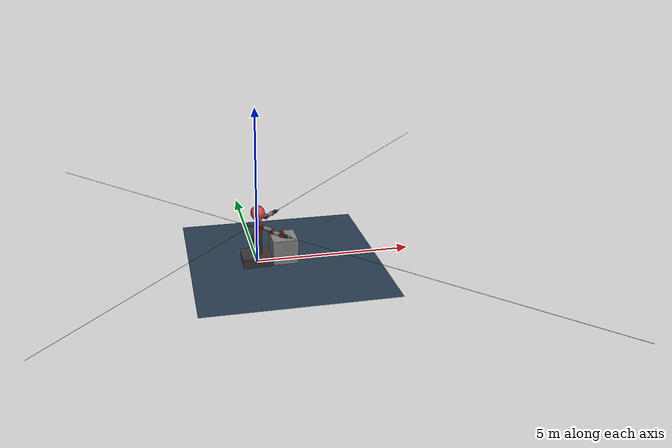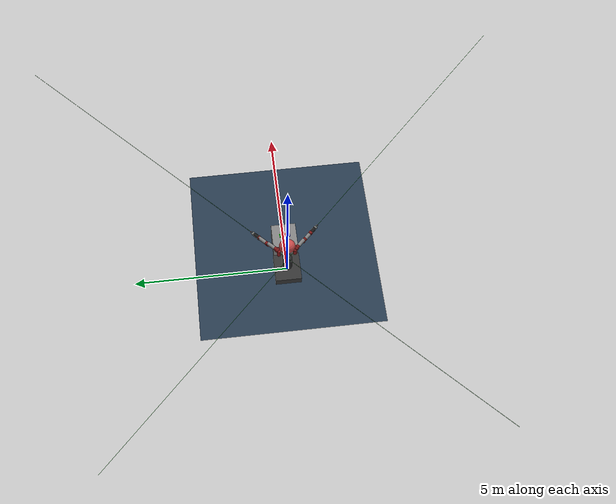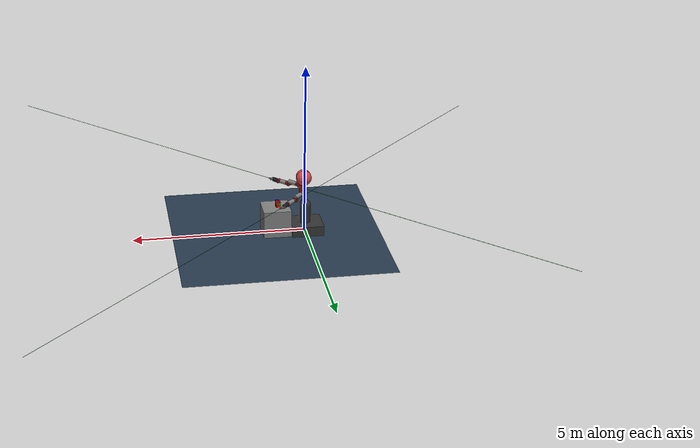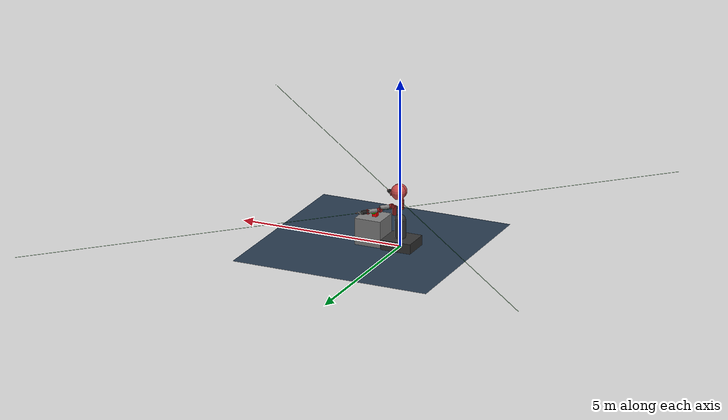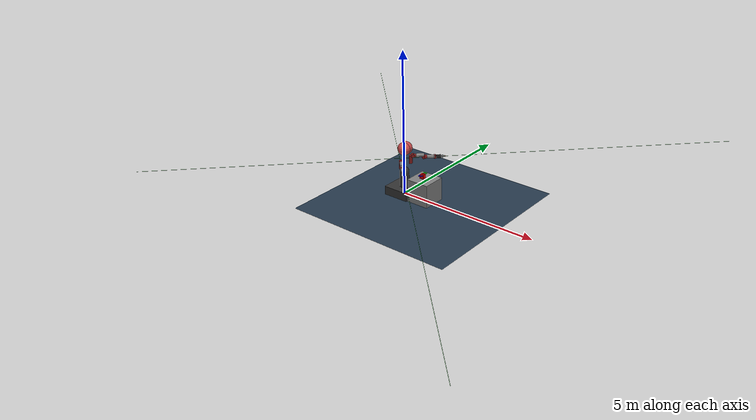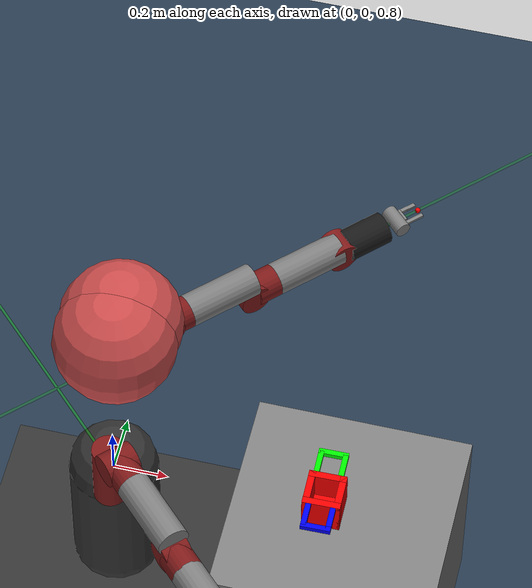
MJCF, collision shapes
<mujoco model="base">
	<compiler angle="radian" meshdir="meshes/" />
	<option cone="elliptic" impratio="20" />
	<size nconmax="5000" njmax="5000" />

	<asset>
	<texture builtin="gradient" height="256" rgb1=".9 .9 1." rgb2=".2 .3 .4" type="skybox" width="256" />
		<texture builtin="checker" height="512" name="texplane" rgb1=".2 .3 .4" rgb2=".1 0.15 0.2" type="2d" width="512" />
		<material name="floorplane" reflectance="0.5" texrepeat="1 1" texture="texplane" texuniform="true" />
	<mesh file="/home/cvgl_ros/installed_libraries/MujocoManipulation/robosuite/models/assets/robots/baxter/meshes/torso/base_link.STL" name="base_link" />
    <mesh file="/home/cvgl_ros/installed_libraries/MujocoManipulation/robosuite/models/assets/robots/baxter/meshes/torso/base_link_collision.STL" name="base_link_collision" />
    <mesh file="/home/cvgl_ros/installed_libraries/MujocoManipulation/robosuite/models/assets/robots/baxter/meshes/base/PEDESTAL.STL" name="PEDESTAL" />
    <mesh file="/home/cvgl_ros/installed_libraries/MujocoManipulation/robosuite/models/assets/robots/baxter/meshes/base/pedestal_link_collision.STL" name="pedestal_link_collision" />
    <mesh file="/home/cvgl_ros/installed_libraries/MujocoManipulation/robosuite/models/assets/robots/baxter/meshes/head/H0.STL" name="H0" />
    <mesh file="/home/cvgl_ros/installed_libraries/MujocoManipulation/robosuite/models/assets/robots/baxter/meshes/head/H1.STL" name="H1" />
    <mesh file="/home/cvgl_ros/installed_libraries/MujocoManipulation/robosuite/models/assets/robots/baxter/meshes/upper_shoulder/S0.STL" name="S0" />
    <mesh file="/home/cvgl_ros/installed_libraries/MujocoManipulation/robosuite/models/assets/robots/baxter/meshes/lower_shoulder/S1.STL" name="S1" />
    <mesh file="/home/cvgl_ros/installed_libraries/MujocoManipulation/robosuite/models/assets/robots/baxter/meshes/upper_elbow/E0.STL" name="E0" />
    <mesh file="/home/cvgl_ros/installed_libraries/MujocoManipulation/robosuite/models/assets/robots/baxter/meshes/lower_elbow/E1.STL" name="E1" />
    <mesh file="/home/cvgl_ros/installed_libraries/MujocoManipulation/robosuite/models/assets/robots/baxter/meshes/upper_forearm/W0.STL" name="W0" />
    <mesh file="/home/cvgl_ros/installed_libraries/MujocoManipulation/robosuite/models/assets/robots/baxter/meshes/lower_forearm/W1.STL" name="W1" />
    <mesh file="/home/cvgl_ros/installed_libraries/MujocoManipulation/robosuite/models/assets/robots/baxter/meshes/wrist/W2.STL" name="W2" />
    <mesh file="/home/cvgl_ros/installed_libraries/MujocoManipulation/robosuite/models/assets/robots/baxter/meshes/electric_gripper/fingers/paddle_tip.STL" name="paddle_tip" />
  <mesh file="/home/cvgl_ros/installed_libraries/MujocoManipulation/robosuite/models/assets/grippers/meshes/two_finger_gripper/electric_gripper_base.STL" name="electric_gripper_base" />
        <mesh file="/home/cvgl_ros/installed_libraries/MujocoManipulation/robosuite/models/assets/grippers/meshes/two_finger_gripper/standard_narrow.STL" name="standard_narrow" />
        <mesh file="/home/cvgl_ros/installed_libraries/MujocoManipulation/robosuite/models/assets/grippers/meshes/two_finger_gripper/half_round_tip.STL" name="half_round_tip" />
    </asset>

	<actuator>
	<velocity ctrllimited="true" ctrlrange="-2 2" joint="right_s0" kv="60" />
    <velocity ctrllimited="true" ctrlrange="-2 2" joint="right_s1" kv="50" />
    <velocity ctrllimited="true" ctrlrange="-2 2" joint="right_e0" kv="20" />
    <velocity ctrllimited="true" ctrlrange="-2 2" joint="right_e1" kv="20" />
    <velocity ctrllimited="true" ctrlrange="-4 4" joint="right_w0" kv="5" />
    <velocity ctrllimited="true" ctrlrange="-4 4" joint="right_w1" kv="5" />
    <velocity ctrllimited="true" ctrlrange="-4 4" joint="right_w2" kv="5" />

    <velocity ctrllimited="true" ctrlrange="-2 2" joint="left_s0" kv="60" />
    <velocity ctrllimited="true" ctrlrange="-2 2" joint="left_s1" kv="50" />
    <velocity ctrllimited="true" ctrlrange="-2 2" joint="left_e0" kv="20" />
    <velocity ctrllimited="true" ctrlrange="-2 2" joint="left_e1" kv="20" />
    <velocity ctrllimited="true" ctrlrange="-4 4" joint="left_w0" kv="5" />
    <velocity ctrllimited="true" ctrlrange="-4 4" joint="left_w1" kv="5" />
    <velocity ctrllimited="true" ctrlrange="-4 4" joint="left_w2" kv="5" />

<position ctrllimited="true" ctrlrange="-0.0115 0.020833" forcelimited="true" forcerange="-20 20" joint="r_gripper_r_finger_joint" kp="10000" name="gripper_r_gripper_r_finger_joint" />
        <position ctrllimited="true" ctrlrange="-0.020833 0.0115" forcelimited="true" forcerange="-20 20" joint="r_gripper_l_finger_joint" kp="10000" name="gripper_r_gripper_l_finger_joint" />

    <position ctrllimited="true" ctrlrange="-0.0115 0.020833" forcelimited="true" forcerange="-20 20" joint="l_gripper_r_finger_joint" kp="10000" name="gripper_l_gripper_r_finger_joint" />
        <position ctrllimited="true" ctrlrange="-0.020833 0.0115" forcelimited="true" forcerange="-20 20" joint="l_gripper_l_finger_joint" kp="10000" name="gripper_l_gripper_l_finger_joint" />

    </actuator>

	<worldbody>
	<geom condim="3" material="floorplane" name="floor" pos="0.8500000000000001 0.0 0.0" size="3 3 .125" type="plane" />
		<body name="table" pos="0.8500000000000001 0.0 0.4">
			<geom friction="1.0 0.005 0.0001" name="table_collision" pos="0 0 0" size="0.4 0.4 0.4" type="box" />
			<geom conaffinity="0" contype="0" group="1" name="table_visual" pos="0 0 0" size="0.4 0.4 0.4" type="box" />
			<site name="table_top" pos="0.0 0.0 0.4" rgba="0 0 0 0" size="0.001 0.001 0.001" />
		</body>
		<light castshadow="false" diffuse=".8 .8 .8" dir="0 -.15 -1" directional="false" pos="1.85 1.0 4.0" specular="0.3 0.3 0.3" />
		<light castshadow="false" diffuse=".8 .8 .8" dir="0 -.15 -1" directional="false" pos="-2.15 -3.0 4.0" specular="0.3 0.3 0.3" />

		<camera mode="fixed" name="birdview" pos="0.6500000000000001 0.0 3.0" quat="0.7071 0 0 0.7071" />

		<camera mode="fixed" name="tabletop" pos="1.35 0.0 1.35" quat="0.653 0.271 0.271 0.653" />

		<camera mode="fixed" name="frontview" pos="2.45 0.0 1.6" quat="0.56 0.43 0.43 0.56" />

	<body name="base" pos="0.0 0.0 0.913">
      <inertial diaginertia="0.001 0.001 0.001" mass="10" pos="0 0 0" />
      <body name="collision_head_link_1" pos="0.11 0 0.75">
        <inertial diaginertia="1e-008 1e-008 1e-008" mass="0.0001" pos="0 0 0" />
        <geom class="viz" margin="0.001" pos="0 0 0" rgba="0.8 0.3 0.3 0.3" size="0.001" type="sphere" />
        <geom margin="0.001" pos="-0.07 -0.04 0" rgba="0.8 0.3 0.3 0.3" size="0.22" type="sphere" />
      </body>
      <body name="collision_head_link_2" pos="0.11 0 0.75">
        <inertial diaginertia="1e-008 1e-008 1e-008" mass="0.0001" pos="0 0 0" />
        <geom margin="0.001" pos="0 0 0" rgba="0.8 0.3 0.3 0.3" size="0.001" type="sphere" />
        <geom margin="0.001" pos="-0.07 0.04 0" rgba="0.8 0.3 0.3 0.3" size="0.22" type="sphere" />
      </body>
      <body name="torso" pos="0 0 0">
        <inertial diaginertia="1.87139 1.66268 0.779991" mass="35.3365" pos="0 0 0" quat="0.997433 0.00167178 0.0715546 -0.00209003" />
        <geom class="viz" margin="0.001" mesh="base_link" />
        <geom class="viz" margin="0.001" mesh="base_link_collision" type="mesh" />
        <body name="pedestal" pos="0 0 0">
          <inertial diaginertia="6.0869 5.81635 4.20915" mass="60.864" pos="0 0 0" quat="0.659267 -0.259505 -0.260945 0.655692" />
          <geom class="viz" margin="0.001" mesh="PEDESTAL" rgba="0.2 0.2 0.2 1" />
          <geom margin="0.001" pos="-.04 0 -.8" rgba="0.2 0.2 0.2 1" size=".46 .425 .16" type="box" />
          <geom margin="0.001" pos="0 0 -.35" rgba="0.2 0.2 0.2 1" size=".165 .25" type="capsule" />
        </body>
        <body name="head" pos="0.06 0 0.686">
          <inertial diaginertia="0.00474065 0.00461087 0.00199949" mass="0.547767" pos="0 0 0" quat="0.339345 0.850736 -0.347392 0.201027" />
          <joint armature=".01" axis="0 0 1" damping="0" limited="true" name="head_pan" pos="0 0 0" range="-1.5708 1.5708" type="hinge" />
          <geom class="viz" margin="0.001" mesh="H0" rgba="0.2 0.2 0.2 1" />
          <body name="screen" pos="0.1227 0 0" quat="0.453099 0.542864 0.542864 0.453099">
            <inertial diaginertia="0.0040484 0.00275826 0.00150834" mass="0.440171" pos="0 0 0" quat="0.995785 0.0113501 -0.000390852 0.0910132" />
            <geom class="viz" euler="0 -1.57 0" margin="0.001" mesh="H1" pos="0 0 -.03" rgba="0.5 0.1 0.1 1" />
            <geom class="viz" margin="0.001" name="display" pos="0 -0.016 0" quat="0.991445 0.130526 0 0" rgba=".9 .9 .9 1" size="0.109 0.08 0.002" type="box" />
          </body>
        </body>
        <body name="right_arm_mount" pos="0.024645 -0.219645 0.118588" quat="0.923879 0 0 -0.382684">
          <inertial diaginertia="1e-008 1e-008 1e-008" mass="0.0001" pos="0 0 0" />
          <body name="right_upper_shoulder" pos="0.055695 0 0.011038">
            <inertial diaginertia="0.0498344 0.0377511 0.0331351" mass="5.70044" pos="0.01783 0.00086 0.19127" quat="0.975667 0.0673303 -0.206117 0.0325173" />
            <joint armature=".01" axis="0 0 1" damping="0" limited="true" name="right_s0" pos="0 0 0" range="-1.70168 1.70168" type="hinge" />
            <geom class="viz" margin="0.001" mesh="S0" rgba="0.5 0.1 0.1 1" />
            <geom margin="0.001" pos="0 0 0.1361" rgba="0.5 0.1 0.1 1" size="0.06 0.1361" type="cylinder" />
            <body name="right_lower_shoulder" pos="0.069 0 0.27035" quat="0.707107 -0.707107 0 0">
              <inertial diaginertia="0.0278991 0.0212327 0.0112937" mass="3.22698" pos="0.06845 0.00269 -0.00529" quat="0.447487 0.536948 0.56425 0.439391" />
              <joint armature=".01" axis="0 0 1" damping="0" limited="true" name="right_s1" pos="0 0 0" range="-2.147 1.047" type="hinge" />
              <geom class="viz" margin="0.001" mesh="S1" rgba="0.5 0.1 0.1 1" />
              <geom margin="0.001" pos="0 0 0" rgba="0.5 0.1 0.1 1" size="0.06 0.06" type="cylinder" />
              <body name="right_upper_elbow" pos="0.102 0 0" quat="0.5 0.5 0.5 0.5">
                <inertial diaginertia="0.0287695 0.0273625 0.011409" mass="4.31272" pos="-0.00276 0.00132 0.18086" quat="0.838995 -0.0423128 -0.121287 0.52876" />
                <joint armature=".01" axis="0 0 1" damping="0" limited="true" name="right_e0" pos="0 0 0" range="-3.05418 3.05418" type="hinge" />
                <geom class="viz" margin="0.001" mesh="E0" rgba="0.5 0.1 0.1 1" />
                <geom margin="0.001" pos="0 0 -0.0535" rgba="0.5 0.1 0.1 1" size="0.06 0.0535" type="cylinder" />
                <geom class="viz" margin="0.001" name="right_upper_elbow_visual" pos="0 0 0.1365" size="0.06 0.1365" type="cylinder" />
                <body name="right_lower_elbow" pos="0.069 0 0.26242" quat="0.5 -0.5 -0.5 -0.5">
                  <inertial diaginertia="0.0132096 0.00950002 0.00685697" mass="2.07206" pos="0.02611 0.00159 -0.01117" quat="0.440433 0.577149 0.562777 0.395221" />
                  <joint armature=".01" axis="0 0 1" damping="0" limited="true" name="right_e1" pos="0 0 0" range="-0.05 2.618" type="hinge" />
                  <geom class="viz" margin="0.001" mesh="E1" rgba="0.5 0.1 0.1 1" />
                  <geom margin="0.001" pos="0 0 0" rgba="0.5 0.1 0.1 1" size="0.06 0.05" type="cylinder" />
                  <body name="right_upper_forearm" pos="0.10359 0 0" quat="0.5 0.5 0.5 0.5">
                    <inertial diaginertia="0.016916 0.0165511 0.00371123" mass="2.24665" pos="-0.00168 0.0046 0.13952" quat="0.892709 -0.0256256 0.00446984 0.449882" />
                    <joint armature=".01" axis="0 0 1" damping="0" limited="true" name="right_w0" pos="0 0 0" range="-3.059 3.059" type="hinge" />
                    <geom class="viz" margin="0.001" mesh="W0" rgba="0.5 0.1 0.1 1" />
                    <geom margin="0.001" pos="0 0 -0.044" rgba="0.5 0.1 0.1 1" size="0.06 0.044" type="cylinder" />
                    <geom class="viz" margin="0.001" name="right_upper_forearm_visual" pos="0 0 0.1" size="0.06 0.1036" type="cylinder" />
                    <body name="right_lower_forearm" pos="0.01 0 0.2707" quat="0.5 -0.5 -0.5 -0.5">
                      <inertial diaginertia="0.00708828 0.00552689 0.00379383" mass="1.60979" pos="0.06041 0.00697 0.006" quat="0.456911 0.468526 0.475683 0.587743" />
                      <joint armature=".01" axis="0 0 1" damping="0" limited="true" name="right_w1" pos="0 0 0" range="-1.5708 2.094" type="hinge" />
                      <geom class="viz" margin="0.001" mesh="W1" rgba="0.5 0.1 0.1 1" />
                      <geom margin="0.001" pos="0 0 0" rgba="0.5 0.1 0.1 1" size="0.06 0.05" type="cylinder" />
                      <body name="right_wrist" pos="0.115975 0 0" quat="0.5 0.5 0.5 0.5">
                        <inertial diaginertia="0.0003082 0.000269928 0.000251035" mass="0.35093" pos="0.00198 0.00125 0.01855" quat="0.0594843 0.68926 -0.16016 0.704082" />
                        <joint armature=".01" axis="0 0 1" damping="0" limited="true" name="right_w2" pos="0 0 0" range="-3.059 3.059" type="hinge" />
                        <geom class="viz" margin="0.001" mesh="W2" rgba="0.1 0.1 0.1 1" />
                        <geom margin="0.001" pos="0 0 0" rgba="0.1 0.1 0.1 1" size="0.06 0.0825" type="cylinder" />
                        <body name="right_hand" pos="0 0 0.11355">

                        <inertial diaginertia="1e-08 1e-08 1e-08" mass="1e-08" pos="1e-08 1e-08 1e-08" quat="0.820473 0.339851 -0.17592 0.424708" />
        <geom size="1e-08 5e-09" type="cylinder" />
        <body name="right_gripper_base" pos="0 0 0.025">
            <inertial diaginertia="3e-08 2e-08 2e-08" mass="0.3" pos="0 0 0" quat="-0.5 0.5 0.5 0.5" />
            <geom conaffinity="0" contype="0" group="1" mesh="electric_gripper_base" quat="0 0 0.707107 0.707107" type="mesh" />
            <geom quat="0 0 0.707107 0.707107" size="0.029 0.05" type="cylinder" />
            <body name="right_gripper" pos="0 0 0.095">
                <inertial diaginertia="0 0 0" mass="0.0001" pos="0 0 0" />

                <site group="1" name="grip_site" pos="0 0 0" rgba="1 0 0 1" size="0.01 0.01 0.01" type="sphere" />

                <site group="1" name="grip_site_cylinder" pos="0 0 0" rgba="0 1 0 0.3" size="0.005 10" type="cylinder" />

                <camera fovy="75" mode="fixed" name="eye_in_hand" pos="0 0 0" quat="0 -1 1 0" />
            </body>

            <body name="r_gripper_l_finger" pos="0 0.01 0.02">
                <inertial diaginertia="0.01 0.01 0.01" mass="0.02" pos="0 0 0" quat="0 0 0 -1" />

                <joint axis="0 1 0" damping="100" limited="true" name="r_gripper_l_finger_joint" pos="0 0 0" range="-0.0115 0.020833" type="slide" />

                <geom conaffinity="0" contype="0" group="1" mesh="standard_narrow" name="r_gripper_l_finger" quat="0 0 0 -1" type="mesh" />

                <geom conaffinity="1" contype="0" friction="0 0 0" name="l_finger_g0" pos="0 0.01725 0.04" quat="0 0 0 -1" size="0.005 0.00675 0.0375" type="box" />
                <geom conaffinity="1" contype="0" friction="0 0 0" name="l_finger_g1" pos="-0.005 -0.003 0.0083" quat="0 0 0 -1" size="0.005 0.025 0.0085" type="box" />

                <body name="r_gripper_l_finger_tip" pos="0 0.01725 0.075">
                    <inertial diaginertia="0.01 0.01 0.01" mass="0.01" pos="0 0 0" quat="0 0 0 1" />
                    <geom conaffinity="0" contype="0" group="1" mesh="half_round_tip" quat="0 0 0 1" type="mesh" />

                    <geom conaffinity="1" contype="0" friction="0 0 0" name="l_fingertip_g0" pos="0 -0.0045 -0.015" quat="0 0 0 1" size="0.004 0.004 0.0185" type="box" />

                </body>
            </body>

            <body name="r_gripper_r_finger" pos="0 -0.01 0.02">
                <inertial diaginertia="0.01 0.01 0.01" mass="0.02" pos="0 0 0" />

                <joint axis="0 1 0" damping="100" limited="true" name="r_gripper_r_finger_joint" pos="0 0 0" range="-0.020833 0.0115" type="slide" />

                <geom conaffinity="0" contype="0" group="1" mesh="standard_narrow" name="r_gripper_r_finger" type="mesh" />

                <geom conaffinity="1" contype="0" friction="0 0 0" name="r_finger_g0" pos="0 -0.01725 0.04" size="0.005 0.00675 0.0375" type="box" />
                <geom conaffinity="1" contype="0" friction="0 0 0" name="r_finger_g1" pos="0.005 0.003 0.0083" size="0.005 0.025 0.0085" type="box" />

                <body name="r_gripper_r_finger_tip" pos="0 -0.01725 0.075">
                    <inertial diaginertia="0.01 0.01 0.01" mass="0.01" pos="0 0 0" />
                    <geom conaffinity="0" contype="0" group="1" mesh="half_round_tip" type="mesh" />

                    <geom conaffinity="1" contype="0" friction="0 0 0" name="r_fingertip_g0" pos="0 0.0045 -0.015" size="0.004 0.004 0.0185" type="box" />

                </body>
            </body>
        </body>
    </body>
                      </body>
                    </body>
                  </body>
                </body>
              </body>
            </body>
          </body>
        </body>
        <body name="left_arm_mount" pos="0.024645 0.219645 0.118588" quat="0.923879 0 0 0.382684">
          <inertial diaginertia="1e-008 1e-008 1e-008" mass="0.0001" pos="0 0 0" />
          <body name="left_upper_shoulder" pos="0.055695 0 0.011038">
            <inertial diaginertia="0.0498344 0.0377511 0.0331351" mass="5.70044" pos="0.01783 0.00086 0.19127" quat="0.975667 0.0673303 -0.206117 0.0325173" />
            <joint armature=".01" axis="0 0 1" damping="0" limited="true" name="left_s0" pos="0 0 0" range="-1.70168 1.70168" type="hinge" />
            <geom class="viz" margin="0.001" mesh="S0" rgba="0.5 0.1 0.1 1" />
            <geom margin="0.001" pos="0 0 0.1361" rgba="0.5 0.1 0.1 1" size="0.06 0.1361" type="cylinder" />
            <body name="left_lower_shoulder" pos="0.069 0 0.27035" quat="0.707107 -0.707107 0 0">
              <inertial diaginertia="0.0278991 0.0212327 0.0112937" mass="3.22698" pos="0.06845 0.00269 -0.00529" quat="0.447487 0.536948 0.56425 0.439391" />
              <joint armature=".01" axis="0 0 1" damping="0" limited="true" name="left_s1" pos="0 0 0" range="-2.147 1.047" type="hinge" />
              <geom class="viz" margin="0.001" mesh="S1" rgba="0.5 0.1 0.1 1" />
              <geom margin="0.001" pos="0 0 0" rgba="0.5 0.1 0.1 1" size="0.06 0.06" type="cylinder" />
              <body name="left_upper_elbow" pos="0.102 0 0" quat="0.5 0.5 0.5 0.5">
                <inertial diaginertia="0.0287695 0.0273625 0.011409" mass="4.31272" pos="-0.00276 0.00132 0.18086" quat="0.838995 -0.0423128 -0.121287 0.52876" />
                <joint armature=".01" axis="0 0 1" damping="0" limited="true" name="left_e0" pos="0 0 0" range="-3.05418 3.05418" type="hinge" />
                <geom class="viz" margin="0.001" mesh="E0" rgba="0.5 0.1 0.1 1" />
                <geom margin="0.001" pos="0 0 -0.0535" rgba="0.5 0.1 0.1 1" size="0.06 0.0535" type="cylinder" />
                <geom class="viz" margin="0.001" name="left_upper_elbow_visual" pos="0 0 0.1365" size="0.06 0.1365" type="cylinder" />
                <body name="left_lower_elbow" pos="0.069 0 0.26242" quat="0.5 -0.5 -0.5 -0.5">
                  <inertial diaginertia="0.0132096 0.00950002 0.00685697" mass="2.07206" pos="0.02611 0.00159 -0.01117" quat="0.440433 0.577149 0.562777 0.395221" />
                  <joint armature=".01" axis="0 0 1" damping="0" limited="true" name="left_e1" pos="0 0 0" range="-0.05 2.618" type="hinge" />
                  <geom class="viz" margin="0.001" mesh="E1" rgba="0.5 0.1 0.1 1" />
                  <geom margin="0.001" pos="0 0 0" rgba="0.5 0.1 0.1 1" size="0.06 0.05" type="cylinder" />
                  <body name="left_upper_forearm" pos="0.10359 0 0" quat="0.5 0.5 0.5 0.5">
                    <inertial diaginertia="0.016916 0.0165511 0.00371123" mass="2.24665" pos="-0.00168 0.0046 0.13952" quat="0.892709 -0.0256256 0.00446984 0.449882" />
                    <joint armature=".01" axis="0 0 1" damping="0" limited="true" name="left_w0" pos="0 0 0" range="-3.059 3.059" type="hinge" />
                    <geom class="viz" margin="0.001" mesh="W0" rgba="0.5 0.1 0.1 1" />
                    <geom margin="0.001" pos="0 0 -0.044" rgba="0.5 0.1 0.1 1" size="0.06 0.044" type="cylinder" />
                    <geom class="viz" margin="0.001" name="left_upper_forearm_visual" pos="0 0 0.136" size="0.06 0.136" type="cylinder" />
                    <body name="left_lower_forearm" pos="0.01 0 0.2707" quat="0.5 -0.5 -0.5 -0.5">
                      <inertial diaginertia="0.00708828 0.00552689 0.00379383" mass="1.60979" pos="0.06041 0.00697 0.006" quat="0.456911 0.468526 0.475683 0.587743" />
                      <joint armature=".01" axis="0 0 1" damping="0" limited="true" name="left_w1" pos="0 0 0" range="-1.5708 2.094" type="hinge" />
                      <geom class="viz" margin="0.001" mesh="W1" rgba="0.5 0.1 0.1 1" />
                      <geom margin="0.001" pos="0 0 0" rgba="0.5 0.1 0.1 1" size="0.06 0.05" type="cylinder" />
                      <body name="left_wrist" pos="0.115975 0 0" quat="0.5 0.5 0.5 0.5">
                        <inertial diaginertia="0.0003082 0.000269928 0.000251035" mass="0.35093" pos="0.00198 0.00125 0.01855" quat="0.0594843 0.68926 -0.16016 0.704082" />
                        <joint armature=".01" axis="0 0 1" damping="0" limited="true" name="left_w2" pos="0 0 0" range="-3.059 3.059" type="hinge" />
                        <geom class="viz" margin="0.001" mesh="W2" rgba="0.1 0.1 0.1 1" />
                        <geom margin="0.001" pos="0 0 0" rgba="0.1 0.1 0.1 1" size="0.06 0.0825" type="cylinder" />
                        <body name="left_hand" pos="0 0 0.11355">

                        <inertial diaginertia="1e-08 1e-08 1e-08" mass="1e-08" pos="1e-08 1e-08 1e-08" quat="0.820473 0.339851 -0.17592 0.424708" />
        <geom size="1e-08 5e-09" type="cylinder" />
        <body name="left_gripper_base" pos="0 0 0.025">
            <inertial diaginertia="3e-08 2e-08 2e-08" mass="0.3" pos="0 0 0" quat="-0.5 0.5 0.5 0.5" />
            <geom conaffinity="0" contype="0" group="1" mesh="electric_gripper_base" quat="0 0 0.707107 0.707107" type="mesh" />
            <geom quat="0 0 0.707107 0.707107" size="0.029 0.05" type="cylinder" />
            <body name="left_gripper" pos="0 0 0.095">
                <inertial diaginertia="0 0 0" mass="0.0001" pos="0 0 0" />

                <site group="1" name="l_g_grip_site" pos="0 0 0" rgba="1 0 0 1" size="0.01 0.01 0.01" type="sphere" />

                <site group="1" name="l_g_grip_site_cylinder" pos="0 0 0" rgba="0 1 0 0.1" size="0.005 10" type="cylinder" />
            </body>

            <body name="l_gripper_l_finger" pos="0 0.01 0.02">
                <inertial diaginertia="0.01 0.01 0.01" mass="0.02" pos="0 0 0" quat="0 0 0 -1" />

                <joint axis="0 1 0" damping="100" limited="true" name="l_gripper_l_finger_joint" pos="0 0 0" range="-0.0115 0.020833" type="slide" />

                <geom conaffinity="0" contype="0" group="1" mesh="standard_narrow" name="l_gripper_l_finger" quat="0 0 0 -1" type="mesh" />

                <geom conaffinity="1" contype="0" friction="0 0 0" name="l_g_l_finger_g0" pos="0 0.01725 0.04" quat="0 0 0 -1" size="0.005 0.00675 0.0375" type="box" />
                <geom conaffinity="1" contype="0" friction="0 0 0" name="l_g_l_finger_g1" pos="-0.005 -0.003 0.0083" quat="0 0 0 -1" size="0.005 0.025 0.0085" type="box" />

                <body name="l_gripper_l_finger_tip" pos="0 0.01725 0.075">
                    <inertial diaginertia="0.01 0.01 0.01" mass="0.01" pos="0 0 0" quat="0 0 0 1" />
                    <geom conaffinity="0" contype="0" group="1" mesh="half_round_tip" quat="0 0 0 1" type="mesh" />

                    <geom conaffinity="1" contype="0" friction="0 0 0" name="l_g_l_fingertip_g0" pos="0 -0.0045 -0.015" quat="0 0 0 1" size="0.004 0.004 0.0185" type="box" />

                </body>
            </body>

            <body name="l_gripper_r_finger" pos="0 -0.01 0.02">
                <inertial diaginertia="0.01 0.01 0.01" mass="0.02" pos="0 0 0" />

                <joint axis="0 1 0" damping="100" limited="true" name="l_gripper_r_finger_joint" pos="0 0 0" range="-0.020833 0.0115" type="slide" />

                <geom conaffinity="0" contype="0" group="1" mesh="standard_narrow" name="l_gripper_r_finger" type="mesh" />

                <geom conaffinity="1" contype="0" friction="0 0 0" name="l_g_r_finger_g0" pos="0 -0.01725 0.04" size="0.005 0.00675 0.0375" type="box" />
                <geom conaffinity="1" contype="0" friction="0 0 0" name="l_g_r_finger_g1" pos="0.005 0.003 0.0083" size="0.005 0.025 0.0085" type="box" />

                <body name="l_gripper_r_finger_tip" pos="0 -0.01725 0.075">
                    <inertial diaginertia="0.01 0.01 0.01" mass="0.01" pos="0 0 0" />
                    <geom conaffinity="0" contype="0" group="1" mesh="half_round_tip" type="mesh" />

                    <geom conaffinity="1" contype="0" friction="0 0 0" name="l_g_r_fingertip_g0" pos="0 0.0045 -0.015" size="0.004 0.004 0.0185" type="box" />

                </body>
            </body>
        </body>
    </body>
                      </body>
                    </body>
                  </body>
                </body>
              </body>
            </body>
          </body>
        </body>
      </body>
    </body>
  <body name="pot" pos="0.785321224395939 -0.005383322155237463 0.8700000000000001" quat="0.9999608609803367 0 0 0.008847401170047911"><geom group="1" pos="0 0 -0.05750000000000001" rgba="1 0 0 1" size="0.07 0.07 0.0125" type="box" /><geom group="1" pos="0 -0.05750000000000001 0" rgba="1 0 0 1" size="0.07 0.0125 0.07" type="box" /><geom group="1" pos="0 0.05750000000000001 0" rgba="1 0 0 1" size="0.07 0.0125 0.07" type="box" /><geom group="1" pos="0.05750000000000001 0 0" rgba="1 0 0 1" size="0.0125 0.07 0.07" type="box" /><geom group="1" pos="-0.05750000000000001 0 0" rgba="1 0 0 1" size="0.0125 0.07 0.07" type="box" /><body name="handle_1"><geom group="1" name="handle_1_c" pos="0 0.16 0.060000000000000005" rgba="0 1 0 1" size="0.055 0.01 0.01" type="box" /><geom group="1" name="handle_1_+" pos="0.045 0.115 0.060000000000000005" rgba="0 1 0 1" size="0.01 0.045 0.01" type="box" /><geom group="1" name="handle_1_-" pos="-0.045 0.115 0.060000000000000005" rgba="0 1 0 1" size="0.01 0.045 0.01" type="box" /></body><body name="handle_2"><geom group="1" name="handle_2_c" pos="0 -0.16 0.060000000000000005" rgba="0 0 1 1" size="0.055 0.01 0.01" type="box" /><geom group="1" name="handle_2_+" pos="0.045 -0.115 0.060000000000000005" rgba="0 0 1 1" size="0.01 0.045 0.01" type="box" /><geom group="1" name="handle_2_-" pos="-0.045 -0.115 0.060000000000000005" rgba="0 0 1 1" size="0.01 0.045 0.01" type="box" /></body><site name="pot_handle_1" pos="0.0 0.155 0.060000000000000005" rgba="0 1 0 1" size="0.005" /><site name="pot_handle_2" pos="0.0 -0.155 0.060000000000000005" rgba="0 0 1 1" size="0.005" /><site name="pot_center" pos="0 0 0" rgba="1 0 0 0" size="0.005" /><joint name="pot" type="free" /></body></worldbody>

	<equality>
	</equality>
<contact><exclude body1="right_upper_shoulder" body2="torso" />
    <exclude body1="right_upper_shoulder" body2="right_upper_elbow" />
    <exclude body1="right_lower_shoulder" body2="torso" />
    <exclude body1="left_upper_shoulder" body2="torso" />
    <exclude body1="left_upper_shoulder" body2="left_upper_elbow" />
    <exclude body1="left_lower_shoulder" body2="torso" />
    <exclude body1="collision_head_link_1" body2="torso" />
    <exclude body1="collision_head_link_2" body2="torso" />
  </contact><default><default class="viz">
      <geom conaffinity="0" contype="0" group="1" margin="0.001" type="mesh" />
    </default>
  </default></mujoco>
